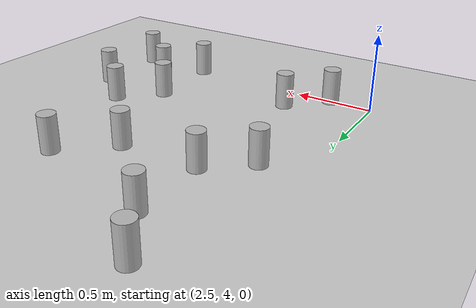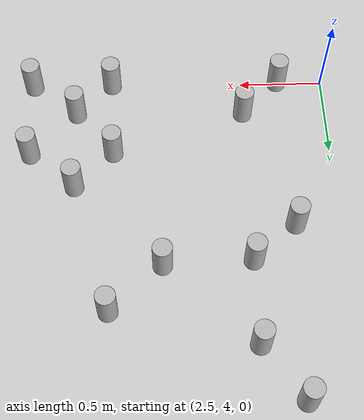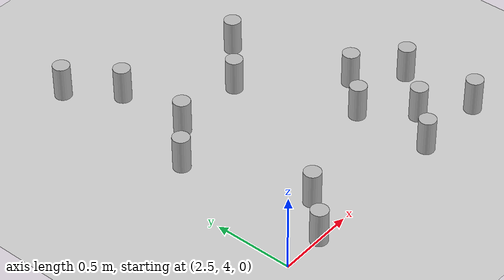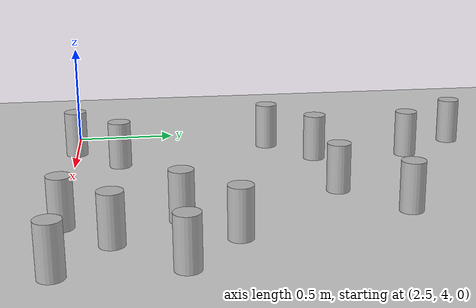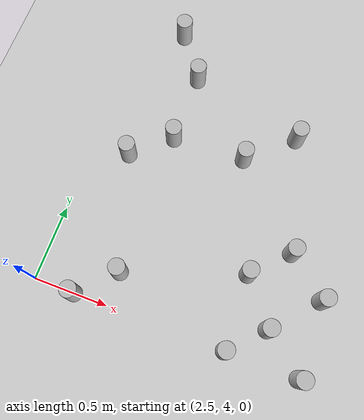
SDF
<sdf version="1.6">
 <world name="default">
  <model name="ground_plane">
   <static>1</static>
   <link name="link">
    <collision name="collision">
     <geometry><plane><normal>0 0 1</normal><size>100 100</size></plane></geometry>
     <surface><friction><ode><mu>100</mu><mu2>50</mu2></ode></friction></surface>
    </collision>
    <visual name="visual">
     <cast_shadows>0</cast_shadows>
     <geometry><plane><normal>0 0 1</normal><size>100 100</size></plane></geometry>
     <material>
      <script><uri>file://media/materials/scripts/gazebo.material</uri><name>Gazebo/Grey</name></script>
     </material>
    </visual>
   </link>
  </model>
  <model name="can3.04.22822890088">
   <link name="link">
    <pose>0 0 0.115 0 -0 0</pose>
    <inertial>
     <mass>0.39</mass>
     <inertia><ixx>0.00058</ixx><ixy>0</ixy><ixz>0</ixz><iyy>0.00058</iyy><iyz>0</iyz><izz>0.00019</izz></inertia>
    </inertial>
    <collision name="collision">
     <geometry><cylinder><radius>0.055</radius><length>0.23</length></cylinder></geometry>
    </collision>
    <visual name="visual">
     <geometry><cylinder><radius>0.055</radius><length>0.23</length></cylinder></geometry>
     <material>
      <script>
       <uri>model://beer/materials/scripts</uri>
       <uri>model://beer/materials/textures</uri>
       <name>Beer/Diffuse</name>
      </script>
     </material>
    </visual>
   </link>
   <pose>3.0 4.22822890088 -2e-06 1e-06 0 -9.5e-05</pose>
  </model>
  <model name="can2.787474284776.0">
   <link name="link">
    <pose>0 0 0.115 0 -0 0</pose>
    <inertial>
     <mass>0.39</mass>
     <inertia><ixx>0.00058</ixx><ixy>0</ixy><ixz>0</ixz><iyy>0.00058</iyy><iyz>0</iyz><izz>0.00019</izz></inertia>
    </inertial>
    <collision name="collision">
     <geometry><cylinder><radius>0.055</radius><length>0.23</length></cylinder></geometry>
    </collision>
    <visual name="visual">
     <geometry><cylinder><radius>0.055</radius><length>0.23</length></cylinder></geometry>
     <material>
      <script>
       <uri>model://beer/materials/scripts</uri>
       <uri>model://beer/materials/textures</uri>
       <name>Beer/Diffuse</name>
      </script>
     </material>
    </visual>
   </link>
   <pose>2.78747428477 6.0 -2e-06 1e-06 0 -9.5e-05</pose>
  </model>
  <model name="can3.05.21591032234">
   <link name="link">
    <pose>0 0 0.115 0 -0 0</pose>
    <inertial>
     <mass>0.39</mass>
     <inertia><ixx>0.00058</ixx><ixy>0</ixy><ixz>0</ixz><iyy>0.00058</iyy><iyz>0</iyz><izz>0.00019</izz></inertia>
    </inertial>
    <collision name="collision">
     <geometry><cylinder><radius>0.055</radius><length>0.23</length></cylinder></geometry>
    </collision>
    <visual name="visual">
     <geometry><cylinder><radius>0.055</radius><length>0.23</length></cylinder></geometry>
     <material>
      <script>
       <uri>model://beer/materials/scripts</uri>
       <uri>model://beer/materials/textures</uri>
       <name>Beer/Diffuse</name>
      </script>
     </material>
    </visual>
   </link>
   <pose>3.0 5.21591032234 -2e-06 1e-06 0 -9.5e-05</pose>
  </model>
  <model name="can4.265396426254.5">
   <link name="link">
    <pose>0 0 0.115 0 -0 0</pose>
    <inertial>
     <mass>0.39</mass>
     <inertia><ixx>0.00058</ixx><ixy>0</ixy><ixz>0</ixz><iyy>0.00058</iyy><iyz>0</iyz><izz>0.00019</izz></inertia>
    </inertial>
    <collision name="collision">
     <geometry><cylinder><radius>0.055</radius><length>0.23</length></cylinder></geometry>
    </collision>
    <visual name="visual">
     <geometry><cylinder><radius>0.055</radius><length>0.23</length></cylinder></geometry>
     <material>
      <script>
       <uri>model://beer/materials/scripts</uri>
       <uri>model://beer/materials/textures</uri>
       <name>Beer/Diffuse</name>
      </script>
     </material>
    </visual>
   </link>
   <pose>4.26539642625 4.5 -2e-06 1e-06 0 -9.5e-05</pose>
  </model>
  <model name="can3.55.23592113351">
   <link name="link">
    <pose>0 0 0.115 0 -0 0</pose>
    <inertial>
     <mass>0.39</mass>
     <inertia><ixx>0.00058</ixx><ixy>0</ixy><ixz>0</ixz><iyy>0.00058</iyy><iyz>0</iyz><izz>0.00019</izz></inertia>
    </inertial>
    <collision name="collision">
     <geometry><cylinder><radius>0.055</radius><length>0.23</length></cylinder></geometry>
    </collision>
    <visual name="visual">
     <geometry><cylinder><radius>0.055</radius><length>0.23</length></cylinder></geometry>
     <material>
      <script>
       <uri>model://beer/materials/scripts</uri>
       <uri>model://beer/materials/textures</uri>
       <name>Beer/Diffuse</name>
      </script>
     </material>
    </visual>
   </link>
   <pose>3.5 5.23592113351 -2e-06 1e-06 0 -9.5e-05</pose>
  </model>
  <model name="can3.790498245084.0">
   <link name="link">
    <pose>0 0 0.115 0 -0 0</pose>
    <inertial>
     <mass>0.39</mass>
     <inertia><ixx>0.00058</ixx><ixy>0</ixy><ixz>0</ixz><iyy>0.00058</iyy><iyz>0</iyz><izz>0.00019</izz></inertia>
    </inertial>
    <collision name="collision">
     <geometry><cylinder><radius>0.055</radius><length>0.23</length></cylinder></geometry>
    </collision>
    <visual name="visual">
     <geometry><cylinder><radius>0.055</radius><length>0.23</length></cylinder></geometry>
     <material>
      <script>
       <uri>model://beer/materials/scripts</uri>
       <uri>model://beer/materials/textures</uri>
       <name>Beer/Diffuse</name>
      </script>
     </material>
    </visual>
   </link>
   <pose>3.79049824508 4.0 -2e-06 1e-06 0 -9.5e-05</pose>
  </model>
  <model name="can2.75069661345.0">
   <link name="link">
    <pose>0 0 0.115 0 -0 0</pose>
    <inertial>
     <mass>0.39</mass>
     <inertia><ixx>0.00058</ixx><ixy>0</ixy><ixz>0</ixz><iyy>0.00058</iyy><iyz>0</iyz><izz>0.00019</izz></inertia>
    </inertial>
    <collision name="collision">
     <geometry><cylinder><radius>0.055</radius><length>0.23</length></cylinder></geometry>
    </collision>
    <visual name="visual">
     <geometry><cylinder><radius>0.055</radius><length>0.23</length></cylinder></geometry>
     <material>
      <script>
       <uri>model://beer/materials/scripts</uri>
       <uri>model://beer/materials/textures</uri>
       <name>Beer/Diffuse</name>
      </script>
     </material>
    </visual>
   </link>
   <pose>2.7506966134 5.0 -2e-06 1e-06 0 -9.5e-05</pose>
  </model>
  <model name="can3.794519953875.5">
   <link name="link">
    <pose>0 0 0.115 0 -0 0</pose>
    <inertial>
     <mass>0.39</mass>
     <inertia><ixx>0.00058</ixx><ixy>0</ixy><ixz>0</ixz><iyy>0.00058</iyy><iyz>0</iyz><izz>0.00019</izz></inertia>
    </inertial>
    <collision name="collision">
     <geometry><cylinder><radius>0.055</radius><length>0.23</length></cylinder></geometry>
    </collision>
    <visual name="visual">
     <geometry><cylinder><radius>0.055</radius><length>0.23</length></cylinder></geometry>
     <material>
      <script>
       <uri>model://beer/materials/scripts</uri>
       <uri>model://beer/materials/textures</uri>
       <name>Beer/Diffuse</name>
      </script>
     </material>
    </visual>
   </link>
   <pose>3.79451995387 5.5 -2e-06 1e-06 0 -9.5e-05</pose>
  </model>
  <model name="can2.775453878344.0">
   <link name="link">
    <pose>0 0 0.115 0 -0 0</pose>
    <inertial>
     <mass>0.39</mass>
     <inertia><ixx>0.00058</ixx><ixy>0</ixy><ixz>0</ixz><iyy>0.00058</iyy><iyz>0</iyz><izz>0.00019</izz></inertia>
    </inertial>
    <collision name="collision">
     <geometry><cylinder><radius>0.055</radius><length>0.23</length></cylinder></geometry>
    </collision>
    <visual name="visual">
     <geometry><cylinder><radius>0.055</radius><length>0.23</length></cylinder></geometry>
     <material>
      <script>
       <uri>model://beer/materials/scripts</uri>
       <uri>model://beer/materials/textures</uri>
       <name>Beer/Diffuse</name>
      </script>
     </material>
    </visual>
   </link>
   <pose>2.77545387834 4.0 -2e-06 1e-06 0 -9.5e-05</pose>
  </model>
  <model name="can4.04.21307891173">
   <link name="link">
    <pose>0 0 0.115 0 -0 0</pose>
    <inertial>
     <mass>0.39</mass>
     <inertia><ixx>0.00058</ixx><ixy>0</ixy><ixz>0</ixz><iyy>0.00058</iyy><iyz>0</iyz><izz>0.00019</izz></inertia>
    </inertial>
    <collision name="collision">
     <geometry><cylinder><radius>0.055</radius><length>0.23</length></cylinder></geometry>
    </collision>
    <visual name="visual">
     <geometry><cylinder><radius>0.055</radius><length>0.23</length></cylinder></geometry>
     <material>
      <script>
       <uri>model://beer/materials/scripts</uri>
       <uri>model://beer/materials/textures</uri>
       <name>Beer/Diffuse</name>
      </script>
     </material>
    </visual>
   </link>
   <pose>4.0 4.21307891173 -2e-06 1e-06 0 -9.5e-05</pose>
  </model>
  <model name="can3.776741333684.5">
   <link name="link">
    <pose>0 0 0.115 0 -0 0</pose>
    <inertial>
     <mass>0.39</mass>
     <inertia><ixx>0.00058</ixx><ixy>0</ixy><ixz>0</ixz><iyy>0.00058</iyy><iyz>0</iyz><izz>0.00019</izz></inertia>
    </inertial>
    <collision name="collision">
     <geometry><cylinder><radius>0.055</radius><length>0.23</length></cylinder></geometry>
    </collision>
    <visual name="visual">
     <geometry><cylinder><radius>0.055</radius><length>0.23</length></cylinder></geometry>
     <material>
      <script>
       <uri>model://beer/materials/scripts</uri>
       <uri>model://beer/materials/textures</uri>
       <name>Beer/Diffuse</name>
      </script>
     </material>
    </visual>
   </link>
   <pose>3.77674133368 4.5 -2e-06 1e-06 0 -9.5e-05</pose>
  </model>
  <model name="can3.05.70004423242">
   <link name="link">
    <pose>0 0 0.115 0 -0 0</pose>
    <inertial>
     <mass>0.39</mass>
     <inertia><ixx>0.00058</ixx><ixy>0</ixy><ixz>0</ixz><iyy>0.00058</iyy><iyz>0</iyz><izz>0.00019</izz></inertia>
    </inertial>
    <collision name="collision">
     <geometry><cylinder><radius>0.055</radius><length>0.23</length></cylinder></geometry>
    </collision>
    <visual name="visual">
     <geometry><cylinder><radius>0.055</radius><length>0.23</length></cylinder></geometry>
     <material>
      <script>
       <uri>model://beer/materials/scripts</uri>
       <uri>model://beer/materials/textures</uri>
       <name>Beer/Diffuse</name>
      </script>
     </material>
    </visual>
   </link>
   <pose>3.0 5.70004423242 -2e-06 1e-06 0 -9.5e-05</pose>
  </model>
  <model name="can4.269931059224.0">
   <link name="link">
    <pose>0 0 0.115 0 -0 0</pose>
    <inertial>
     <mass>0.39</mass>
     <inertia><ixx>0.00058</ixx><ixy>0</ixy><ixz>0</ixz><iyy>0.00058</iyy><iyz>0</iyz><izz>0.00019</izz></inertia>
    </inertial>
    <collision name="collision">
     <geometry><cylinder><radius>0.055</radius><length>0.23</length></cylinder></geometry>
    </collision>
    <visual name="visual">
     <geometry><cylinder><radius>0.055</radius><length>0.23</length></cylinder></geometry>
     <material>
      <script>
       <uri>model://beer/materials/scripts</uri>
       <uri>model://beer/materials/textures</uri>
       <name>Beer/Diffuse</name>
      </script>
     </material>
    </visual>
   </link>
   <pose>4.26993105922 4.0 -2e-06 1e-06 0 -9.5e-05</pose>
  </model>
  <model name="can4.04.72703894242">
   <link name="link">
    <pose>0 0 0.115 0 -0 0</pose>
    <inertial>
     <mass>0.39</mass>
     <inertia><ixx>0.00058</ixx><ixy>0</ixy><ixz>0</ixz><iyy>0.00058</iyy><iyz>0</iyz><izz>0.00019</izz></inertia>
    </inertial>
    <collision name="collision">
     <geometry><cylinder><radius>0.055</radius><length>0.23</length></cylinder></geometry>
    </collision>
    <visual name="visual">
     <geometry><cylinder><radius>0.055</radius><length>0.23</length></cylinder></geometry>
     <material>
      <script>
       <uri>model://beer/materials/scripts</uri>
       <uri>model://beer/materials/textures</uri>
       <name>Beer/Diffuse</name>
      </script>
     </material>
    </visual>
   </link>
   <pose>4.0 4.72703894242 -2e-06 1e-06 0 -9.5e-05</pose>
  </model>
 </world>
</sdf>
